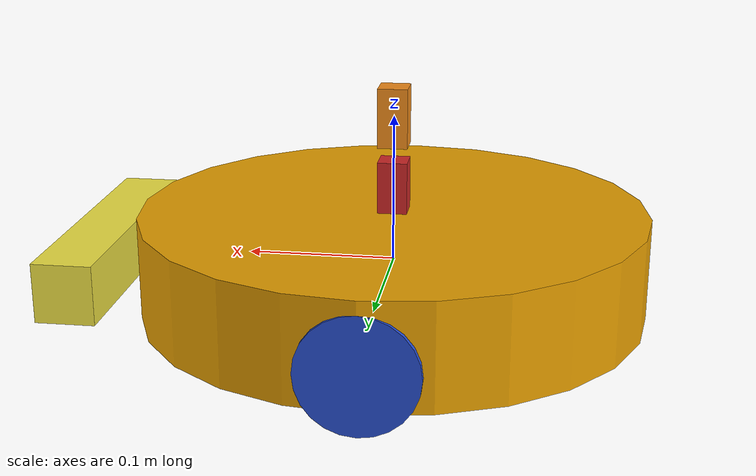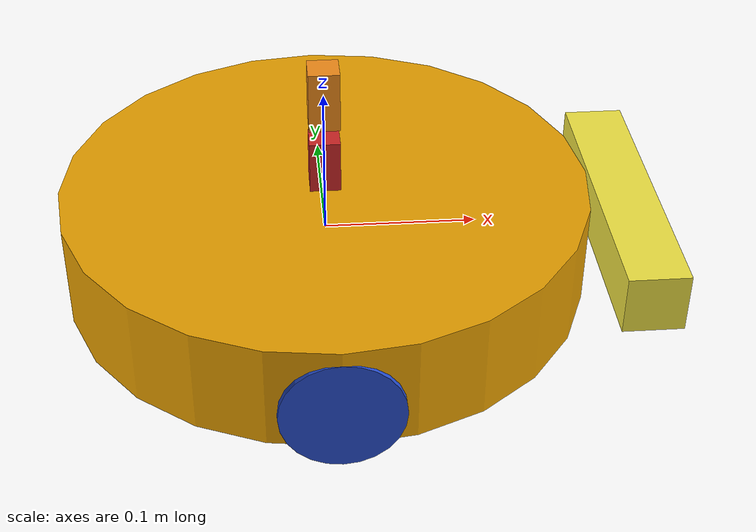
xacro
<robot name="vc_robot_v1"
       xmlns:xacro="http://www.ros.org/wiki/xacro">

    <xacro:include filename="$(find beacon_gazebo_plugin)/urdf/vc_robot_v1/vc_robot_v1_gazebo.xacro" />
    <xacro:include filename="$(find beacon_gazebo_plugin)/urdf/vc_robot_v1/macros.xacro" />

    <xacro:property name="pi" value="3.1415926535897931"/>

    <link name="base_link">
        <!-- pose and inertial -->
        <pose>0 0 0.05 0 0 0</pose>
        <inertial>
            <mass value="0.5"/>
            <origin rpy="0 0 0" xyz="0 0 0.05"/>
            <inertia ixx="0.206208333333" ixy="0" ixz="0" iyy="0.206208333333" iyz="0" izz="0.206208333333"/>
        </inertial>
        <!-- body -->
        <collision name="collision_chassis">
            <origin rpy="0 0 0" xyz="0 0 0"/>
            <geometry>
                <cylinder length="0.07" radius="${0.345/2}"/>
            </geometry>
        </collision>
        <visual>
            <origin rpy="0 0 0" xyz="0 0 0"/>
            <geometry>
                <cylinder length="0.07" radius="${0.345/2}"/>
            </geometry>
        </visual>
        <!-- caster front -->
        <collision name="caster_front_collision">]
            <origin rpy="0 1.5707 0" xyz="0.05 0 -0.012"/>
            <geometry>
                <cylinder length="0.025" radius="0.038"/>
            </geometry>
            <surface>
                <friction>
                    <ode>
                        <mu>0</mu>
                        <mu2>0</mu2>
                        <slip1>1.0</slip1>
                        <slip2>1.0</slip2>
                    </ode>
                </friction>
            </surface>
        </collision>
        <collision name="caster_back_collision">]
            <origin rpy="0 1.5707 0" xyz="-0.05 0 -0.012"/>
            <geometry>
                <cylinder length="0.025" radius="0.038"/>
            </geometry>
            <surface>
                <friction>
                    <ode>
                        <mu>0</mu>
                        <mu2>0</mu2>
                        <slip1>1.0</slip1>
                        <slip2>1.0</slip2>
                    </ode>
                </friction>
            </surface>
        </collision>
        <visual name="caster_back_visual">
            <origin rpy="0 1.5707 0" xyz="-0.05 0 -0.012"/>
            <geometry>
                <cylinder length="0.025" radius="0.038"/>
            </geometry>
        </visual>
    </link>

    <xacro:link_wheel name="link_right_wheel" />
    <xacro:joint_wheel name="joint_right_wheel" child="link_right_wheel" origin_xyz="0 0.16 -0.012" parent="base_link" />

    <xacro:link_wheel name="link_left_wheel" />
    <xacro:joint_wheel name="joint_left_wheel" child="link_left_wheel" origin_xyz="0 -0.16 -0.012" parent="base_link" />

    <joint name="front_bumper_joint" type="fixed">
        <axis xyz="0 1 0" />
        <origin xyz="0.2 0 0" rpy="0 0 0"/>
        <parent link="base_link"/>
        <child link="link_front_bumper"/>
    </joint>
    <joint name="imu_joint" type="fixed">
        <axis xyz="0 1 0" />
        <origin xyz="0 0 0.01" rpy="0 0 0"/>
        <parent link="base_link"/>
        <child link="imu_link"/>
    </joint>
    <gazebo reference='imu_joint'>
        <preserveFixedJoint>true</preserveFixedJoint>
    </gazebo>
    <joint name="receiver_joint" type="fixed">
        <axis xyz="0 1 0" />
        <origin xyz="0 0 0.05" rpy="0 0 0"/>
        <parent link="base_link"/>
        <child link="receiver_link"/>
    </joint>
    <gazebo reference='receiver_joint'>
        <preserveFixedJoint>true</preserveFixedJoint>
    </gazebo>
    <joint name="beacon_joint" type="fixed">
        <axis xyz="0 1 0" />
        <origin xyz="0 0 0.1" rpy="0 0 0"/>
        <parent link="base_link"/>
        <child link="beacon_link"/>
    </joint>
    <gazebo reference='beacon_joint'>
        <preserveFixedJoint>true</preserveFixedJoint>
    </gazebo>
    <!--  &lt;!&ndash; Camera &ndash;&gt;-->
    <link name="link_front_bumper">
        <pose>0 0 0 0 0 0</pose>
        <collision name="link_front_bumper_collision">
            <origin xyz="0 0 0" rpy="0 0 0"/>
            <geometry>
                <box size="0.04 0.20 0.04"/>
            </geometry>
        </collision>

        <visual>
            <origin xyz="0 0 0" rpy="0 0 0"/>
            <geometry>
                <box size="0.04 0.20 0.04"/>
            </geometry>
        </visual>

        <inertial>
            <mass value="1e-5" />
            <origin xyz="0 0 0" rpy="0 0 0"/>
            <inertia ixx="1e-6" ixy="0" ixz="0" iyy="1e-6" iyz="0" izz="1e-6" />
        </inertial>
    </link>

    <link name="imu_link">
        <pose>0 0 0 0 0 0</pose>
        <collision>
            <origin xyz="0 0 0" rpy="0 0 0"/>
            <geometry>
                <box size="0.04 0.04 0.02"/>
            </geometry>
        </collision>

        <visual>
            <origin xyz="0 0 0" rpy="0 0 0"/>
            <geometry>
                <box size="0.04 0.04 0.04"/>
            </geometry>
        </visual>

        <inertial>
            <mass value="1e-5" />
            <origin xyz="0 0 0" rpy="0 0 0"/>
            <inertia ixx="1e-6" ixy="0" ixz="0" iyy="1e-6" iyz="0" izz="1e-6" />
        </inertial>
    </link>

    <link name="receiver_link">
        <pose>0 0 0 0 0 0</pose>
        <collision>
            <origin xyz="0 0 0" rpy="0 0 0"/>
            <geometry>
                <box size="0.02 0.02 0.04"/>
            </geometry>
        </collision>

        <visual>
            <origin xyz="0 0 0" rpy="0 0 0"/>
            <geometry>
                <box size="0.02 0.02 0.04"/>
            </geometry>
        </visual>
        <inertial>
            <mass value="1e-5" />
            <origin xyz="0 0 0" rpy="0 0 0"/>
            <inertia ixx="1e-6" ixy="0" ixz="0" iyy="1e-6" iyz="0" izz="1e-6" />
        </inertial>
    </link>

    <link name="beacon_link">
        <pose>0 0 0 0 0 0</pose>
        <collision>
            <origin xyz="0 0 0" rpy="0 0 0"/>
            <geometry>
                <box size="0.02 0.02 0.04"/>
            </geometry>
        </collision>

        <visual>
            <origin xyz="0 0 0" rpy="0 0 0"/>
            <geometry>
                <box size="0.02 0.02 0.04"/>
            </geometry>
        </visual>
        <inertial>
            <mass value="1e-5" />
            <origin xyz="0 0 0" rpy="0 0 0"/>
            <inertia ixx="1e-6" ixy="0" ixz="0" iyy="1e-6" iyz="0" izz="1e-6" />
        </inertial>
    </link>
</robot>

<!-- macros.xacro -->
<robot xmlns:xacro="http://www.ros.org/wiki/xacro">
    <xacro:property name="pi" value="3.1415926535897931"/>
    <xacro:macro name="cylinder_inertia" params="mass r l">
        <inertia ixx="${mass*(3*r*r+l*l)/12}" ixy="0" ixz="0"
                 iyy="${mass*(3*r*r+l*l)/12}" iyz="0"
                 izz="${mass*(r*r)/2}"/>
    </xacro:macro>
    <xacro:macro name="link_wheel" params="name">
        <xacro:property name="mass" value="0.5"/>
        <xacro:property name="width" value="0.025"/>
        <xacro:property name="radius" value="0.038"/>
        <link name="${name}">
            <inertial>
                <mass value="${mass}"/>
                <origin rpy="0 1.5707 1.5707" xyz="0 0 0"/>

                <xacro:cylinder_inertia mass="${mass}" r="${radius}" l="${width}" />
            </inertial>
            <collision name="link_${name}_wheel_collision">
                <origin rpy="0 1.5707 1.5707" xyz="0 0 0"/>
                <geometry>
                    <cylinder length="${width}" radius="${radius}"/>
                </geometry>
            </collision>
            <visual name="link_${name}_wheel_visual">
                <origin rpy="0 1.5707 1.5707" xyz="0 0 0"/>
                <geometry>
                    <cylinder length="${width}" radius="${radius}"/>
                </geometry>
            </visual>
        </link>
    </xacro:macro>

    <xacro:macro name="joint_wheel" params="name child origin_xyz parent">
        <joint name="${name}" type="continuous">
            <origin rpy="0 0 0" xyz="${origin_xyz}"/>
            <child link="${child}"/>
            <parent link="${parent}"/>
            <axis rpy="0 0 0" xyz="0 1 0"/>
            <limit effort="100" velocity="100"/>
            <joint_properties damping="0" friction="0"/>
        </joint>
    </xacro:macro>

</robot>
